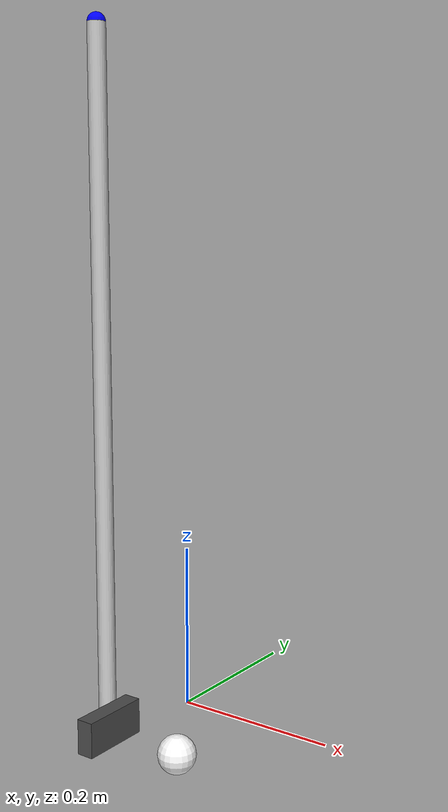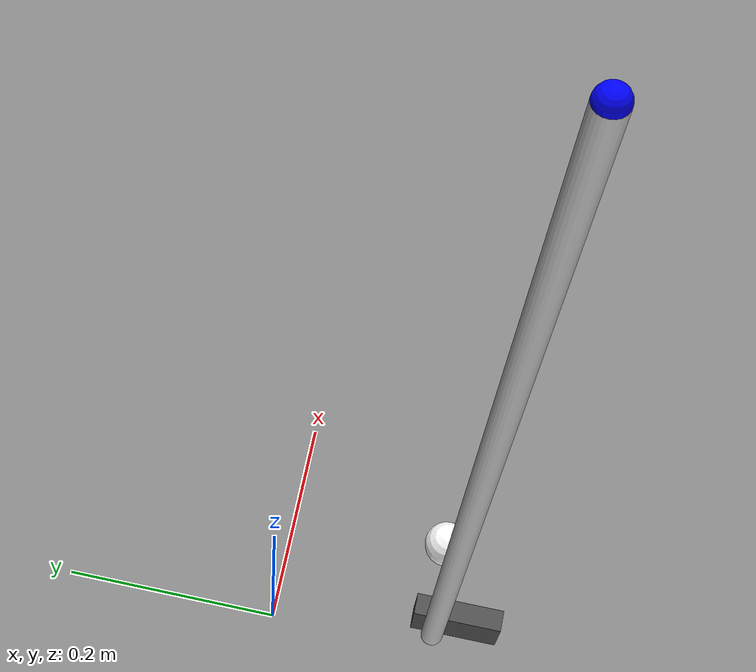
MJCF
<mujoco>
  <worldbody>
    <!-- The Golf Ball -->
    <body name="ball" pos="0.1 -0.15 0.0216">
      <freejoint/>
      <geom type="sphere" size="0.0216" rgba="1 1 1 1" mass="0.045"/>
    </body>

    <!-- The Golf Club -->
    <!-- Spawned roughly near the hand so the weld constraint doesn't snap violently on frame 1 -->
    <body name="club" pos="0 -0.15 0.8">
      <freejoint/>

      <!-- The Shaft -->
      <geom type="cylinder" fromto="0 0 0 0 0 -0.76" size="0.01" rgba="0.8 0.8 0.8 1" mass="0.3"/>
      <!-- The Head -->
      <geom type="box" pos="0.02 -0.02 -0.76" size="0.01 0.04 0.02" rgba="0.3 0.3 0.3 1" mass="0.2"/>

      <!-- The site that gets welded to the robot's hand -->
      <site name="club_handle_site" pos="0 0 0" size="0.01" rgba="0 0 1 1"/>
      <!-- The site used to calculate Inverse Kinematics -->
      <site name="club_head_site" pos="0.02 0 -0.76" size="0.01" rgba="1 0 0 1"/>
    </body>
  </worldbody>
</mujoco>
